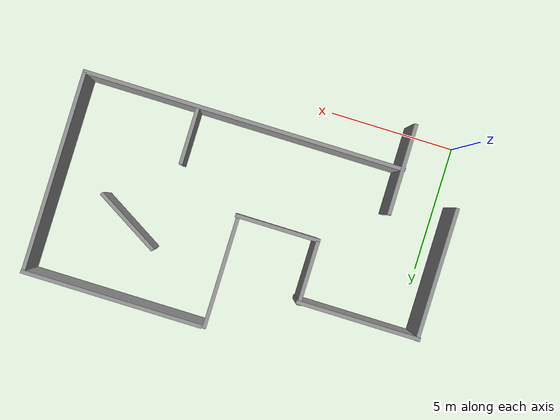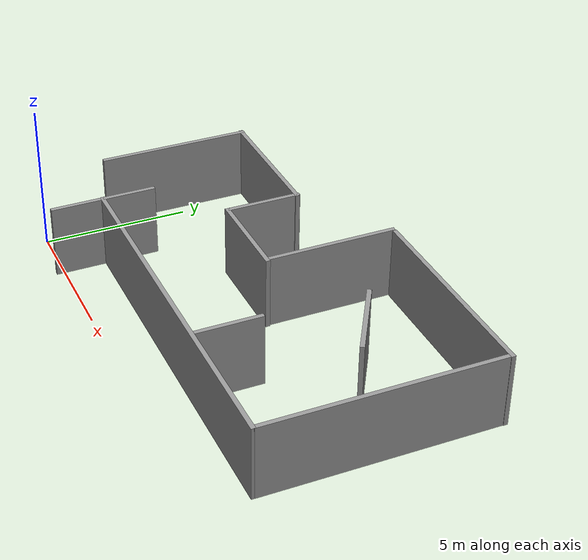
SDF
<?xml version='1.0'?>
<sdf version='1.7'>
  <model name='maze_2'>
    <link name='maze_2::maze_2::Wall_10'>
      <pose>1.98421 1.52646 0 0 -0 1.57526</pose>
      <self_collide>0</self_collide>
      <enable_wind>0</enable_wind>
      <kinematic>0</kinematic>
      <inertial>
        <inertia>
          <ixx>0</ixx>
          <ixy>0</ixy>
          <ixz>0</ixz>
          <iyy>0</iyy>
          <iyz>0</iyz>
          <izz>0</izz>
        </inertia>
        <mass>0</mass>
        <pose>0 0 0 0 -0 0</pose>
      </inertial>
      <visual name='Wall_10_Visual'>
        <pose>0 0 1.25 0 -0 0</pose>
        <geometry>
          <box>
            <size>3.58279 0.15 2.5</size>
          </box>
        </geometry>
        <material>
          <script>
            <uri>file://media/materials/scripts/gazebo.material</uri>
            <name>Gazebo/Grey</name>
          </script>
          <ambient>1 1 1 1</ambient>
          <shader type='pixel'/>
        </material>
        <meta>
          <layer>0</layer>
        </meta>
        <transparency>0</transparency>
        <cast_shadows>1</cast_shadows>
      </visual>
      <collision name='Wall_10_Collision'>
        <laser_retro>0</laser_retro>
        <max_contacts>10</max_contacts>
        <pose>0 0 1.25 0 -0 0</pose>
        <geometry>
          <box>
            <size>3.58279 0.15 2.5</size>
          </box>
        </geometry>
        <surface>
          <friction>
            <ode>
              <mu>1</mu>
              <mu2>1</mu2>
              <fdir1>0 0 0</fdir1>
              <slip1>0</slip1>
              <slip2>0</slip2>
            </ode>
            <torsional>
              <coefficient>1</coefficient>
              <patch_radius>0</patch_radius>
              <surface_radius>0</surface_radius>
              <use_patch_radius>1</use_patch_radius>
              <ode>
                <slip>0</slip>
              </ode>
            </torsional>
          </friction>
          <bounce>
            <restitution_coefficient>0</restitution_coefficient>
            <threshold>1e+06</threshold>
          </bounce>
          <contact>
            <collide_without_contact>0</collide_without_contact>
            <collide_without_contact_bitmask>1</collide_without_contact_bitmask>
            <collide_bitmask>1</collide_bitmask>
            <ode>
              <soft_cfm>0</soft_cfm>
              <soft_erp>0.2</soft_erp>
              <kp>1e+13</kp>
              <kd>1</kd>
              <max_vel>0.01</max_vel>
              <min_depth>0</min_depth>
            </ode>
            <bullet>
              <split_impulse>1</split_impulse>
              <split_impulse_penetration_threshold>-0.01</split_impulse_penetration_threshold>
              <soft_cfm>0</soft_cfm>
              <soft_erp>0.2</soft_erp>
              <kp>1e+13</kp>
              <kd>1</kd>
            </bullet>
          </contact>
        </surface>
      </collision>
    </link>
    <link name='maze_2::maze_2::Wall_12'>
      <pose>1.91308 7.47999 0 0 -0 0</pose>
      <self_collide>0</self_collide>
      <enable_wind>0</enable_wind>
      <kinematic>0</kinematic>
      <visual name='Wall_12_Visual'>
        <pose>0 0 1.25 0 -0 0</pose>
        <geometry>
          <box>
            <size>4.8995 0.15 2.5</size>
          </box>
        </geometry>
        <material>
          <script>
            <uri>file://media/materials/scripts/gazebo.material</uri>
            <name>Gazebo/Grey</name>
          </script>
          <ambient>1 1 1 1</ambient>
          <shader type='pixel'/>
        </material>
        <meta>
          <layer>0</layer>
        </meta>
        <transparency>0</transparency>
        <cast_shadows>1</cast_shadows>
      </visual>
      <collision name='Wall_12_Collision'>
        <laser_retro>0</laser_retro>
        <max_contacts>10</max_contacts>
        <pose>0 0 1.25 0 -0 0</pose>
        <geometry>
          <box>
            <size>4.8995 0.15 2.5</size>
          </box>
        </geometry>
        <surface>
          <friction>
            <ode>
              <mu>1</mu>
              <mu2>1</mu2>
              <fdir1>0 0 0</fdir1>
              <slip1>0</slip1>
              <slip2>0</slip2>
            </ode>
            <torsional>
              <coefficient>1</coefficient>
              <patch_radius>0</patch_radius>
              <surface_radius>0</surface_radius>
              <use_patch_radius>1</use_patch_radius>
              <ode>
                <slip>0</slip>
              </ode>
            </torsional>
          </friction>
          <bounce>
            <restitution_coefficient>0</restitution_coefficient>
            <threshold>1e+06</threshold>
          </bounce>
          <contact>
            <collide_without_contact>0</collide_without_contact>
            <collide_without_contact_bitmask>1</collide_without_contact_bitmask>
            <collide_bitmask>1</collide_bitmask>
            <ode>
              <soft_cfm>0</soft_cfm>
              <soft_erp>0.2</soft_erp>
              <kp>1e+13</kp>
              <kd>1</kd>
              <max_vel>0.01</max_vel>
              <min_depth>0</min_depth>
            </ode>
            <bullet>
              <split_impulse>1</split_impulse>
              <split_impulse_penetration_threshold>-0.01</split_impulse_penetration_threshold>
              <soft_cfm>0</soft_cfm>
              <soft_erp>0.2</soft_erp>
              <kp>1e+13</kp>
              <kd>1</kd>
            </bullet>
          </contact>
        </surface>
      </collision>
    </link>
    <link name='maze_2::maze_2::Wall_13'>
      <pose>4.2445 6.32095 0 0 0 -1.5708</pose>
      <self_collide>0</self_collide>
      <enable_wind>0</enable_wind>
      <kinematic>0</kinematic>
      <visual name='Wall_13_Visual'>
        <pose>0 0 1.25 0 -0 0</pose>
        <geometry>
          <box>
            <size>2.5285 0.15 2.5</size>
          </box>
        </geometry>
        <material>
          <script>
            <uri>file://media/materials/scripts/gazebo.material</uri>
            <name>Gazebo/Grey</name>
          </script>
          <ambient>1 1 1 1</ambient>
          <shader type='pixel'/>
        </material>
        <meta>
          <layer>0</layer>
        </meta>
        <transparency>0</transparency>
        <cast_shadows>1</cast_shadows>
      </visual>
      <collision name='Wall_13_Collision'>
        <laser_retro>0</laser_retro>
        <max_contacts>10</max_contacts>
        <pose>0 0 1.25 0 -0 0</pose>
        <geometry>
          <box>
            <size>2.5285 0.15 2.5</size>
          </box>
        </geometry>
        <surface>
          <friction>
            <ode>
              <mu>1</mu>
              <mu2>1</mu2>
              <fdir1>0 0 0</fdir1>
              <slip1>0</slip1>
              <slip2>0</slip2>
            </ode>
            <torsional>
              <coefficient>1</coefficient>
              <patch_radius>0</patch_radius>
              <surface_radius>0</surface_radius>
              <use_patch_radius>1</use_patch_radius>
              <ode>
                <slip>0</slip>
              </ode>
            </torsional>
          </friction>
          <bounce>
            <restitution_coefficient>0</restitution_coefficient>
            <threshold>1e+06</threshold>
          </bounce>
          <contact>
            <collide_without_contact>0</collide_without_contact>
            <collide_without_contact_bitmask>1</collide_without_contact_bitmask>
            <collide_bitmask>1</collide_bitmask>
            <ode>
              <soft_cfm>0</soft_cfm>
              <soft_erp>0.2</soft_erp>
              <kp>1e+13</kp>
              <kd>1</kd>
              <max_vel>0.01</max_vel>
              <min_depth>0</min_depth>
            </ode>
            <bullet>
              <split_impulse>1</split_impulse>
              <split_impulse_penetration_threshold>-0.01</split_impulse_penetration_threshold>
              <soft_cfm>0</soft_cfm>
              <soft_erp>0.2</soft_erp>
              <kp>1e+13</kp>
              <kd>1</kd>
            </bullet>
          </contact>
        </surface>
      </collision>
    </link>
    <link name='maze_2::maze_2::Wall_14'>
      <pose>5.848 5.03288 0 0 -0 0</pose>
      <self_collide>0</self_collide>
      <enable_wind>0</enable_wind>
      <kinematic>0</kinematic>
      <visual name='Wall_14_Visual'>
        <pose>0 0 1.25 0 -0 0</pose>
        <geometry>
          <box>
            <size>3.357 0.15 2.5</size>
          </box>
        </geometry>
        <material>
          <script>
            <uri>file://media/materials/scripts/gazebo.material</uri>
            <name>Gazebo/Grey</name>
          </script>
          <ambient>1 1 1 1</ambient>
          <shader type='pixel'/>
        </material>
        <meta>
          <layer>0</layer>
        </meta>
        <transparency>0</transparency>
        <cast_shadows>1</cast_shadows>
      </visual>
      <collision name='Wall_14_Collision'>
        <laser_retro>0</laser_retro>
        <max_contacts>10</max_contacts>
        <pose>0 0 1.25 0 -0 0</pose>
        <geometry>
          <box>
            <size>3.357 0.15 2.5</size>
          </box>
        </geometry>
        <surface>
          <friction>
            <ode>
              <mu>1</mu>
              <mu2>1</mu2>
              <fdir1>0 0 0</fdir1>
              <slip1>0</slip1>
              <slip2>0</slip2>
            </ode>
            <torsional>
              <coefficient>1</coefficient>
              <patch_radius>0</patch_radius>
              <surface_radius>0</surface_radius>
              <use_patch_radius>1</use_patch_radius>
              <ode>
                <slip>0</slip>
              </ode>
            </torsional>
          </friction>
          <bounce>
            <restitution_coefficient>0</restitution_coefficient>
            <threshold>1e+06</threshold>
          </bounce>
          <contact>
            <collide_without_contact>0</collide_without_contact>
            <collide_without_contact_bitmask>1</collide_without_contact_bitmask>
            <collide_bitmask>1</collide_bitmask>
            <ode>
              <soft_cfm>0</soft_cfm>
              <soft_erp>0.2</soft_erp>
              <kp>1e+13</kp>
              <kd>1</kd>
              <max_vel>0.01</max_vel>
              <min_depth>0</min_depth>
            </ode>
            <bullet>
              <split_impulse>1</split_impulse>
              <split_impulse_penetration_threshold>-0.01</split_impulse_penetration_threshold>
              <soft_cfm>0</soft_cfm>
              <soft_erp>0.2</soft_erp>
              <kp>1e+13</kp>
              <kd>1</kd>
            </bullet>
          </contact>
        </surface>
      </collision>
    </link>
    <link name='maze_2::maze_2::Wall_18'>
      <pose>7.3995 7.2919 0 0 -0 1.5708</pose>
      <self_collide>0</self_collide>
      <enable_wind>0</enable_wind>
      <kinematic>0</kinematic>
      <inertial>
        <inertia>
          <ixx>0</ixx>
          <ixy>0</ixy>
          <ixz>0</ixz>
          <iyy>0</iyy>
          <iyz>0</iyz>
          <izz>0</izz>
        </inertia>
        <mass>0</mass>
        <pose>0 0 0 0 -0 0</pose>
      </inertial>
      <visual name='Wall_18_Visual'>
        <pose>0 0 1.25 0 -0 0</pose>
        <geometry>
          <box>
            <size>4.36847 0.15 2.5</size>
          </box>
        </geometry>
        <material>
          <script>
            <uri>file://media/materials/scripts/gazebo.material</uri>
            <name>Gazebo/Grey</name>
          </script>
          <ambient>1 1 1 1</ambient>
          <shader type='pixel'/>
        </material>
        <meta>
          <layer>0</layer>
        </meta>
        <transparency>0</transparency>
        <cast_shadows>1</cast_shadows>
      </visual>
      <collision name='Wall_18_Collision'>
        <laser_retro>0</laser_retro>
        <max_contacts>10</max_contacts>
        <pose>0 0 1.25 0 -0 0</pose>
        <geometry>
          <box>
            <size>4.36847 0.15 2.5</size>
          </box>
        </geometry>
        <surface>
          <friction>
            <ode>
              <mu>1</mu>
              <mu2>1</mu2>
              <fdir1>0 0 0</fdir1>
              <slip1>0</slip1>
              <slip2>0</slip2>
            </ode>
            <torsional>
              <coefficient>1</coefficient>
              <patch_radius>0</patch_radius>
              <surface_radius>0</surface_radius>
              <use_patch_radius>1</use_patch_radius>
              <ode>
                <slip>0</slip>
              </ode>
            </torsional>
          </friction>
          <bounce>
            <restitution_coefficient>0</restitution_coefficient>
            <threshold>1e+06</threshold>
          </bounce>
          <contact>
            <collide_without_contact>0</collide_without_contact>
            <collide_without_contact_bitmask>1</collide_without_contact_bitmask>
            <collide_bitmask>1</collide_bitmask>
            <ode>
              <soft_cfm>0</soft_cfm>
              <soft_erp>0.2</soft_erp>
              <kp>1e+13</kp>
              <kd>1</kd>
              <max_vel>0.01</max_vel>
              <min_depth>0</min_depth>
            </ode>
            <bullet>
              <split_impulse>1</split_impulse>
              <split_impulse_penetration_threshold>-0.01</split_impulse_penetration_threshold>
              <soft_cfm>0</soft_cfm>
              <soft_erp>0.2</soft_erp>
              <kp>1e+13</kp>
              <kd>1</kd>
            </bullet>
          </contact>
        </surface>
      </collision>
    </link>
    <link name='maze_2::maze_2::Wall_19'>
      <pose>11.0742 9.42956 0 0 -0 0</pose>
      <self_collide>0</self_collide>
      <enable_wind>0</enable_wind>
      <kinematic>0</kinematic>
      <inertial>
        <inertia>
          <ixx>0</ixx>
          <ixy>0</ixy>
          <ixz>0</ixz>
          <iyy>0</iyy>
          <iyz>0</iyz>
          <izz>0</izz>
        </inertia>
        <mass>0</mass>
        <pose>0 0 0 0 -0 0</pose>
      </inertial>
      <visual name='Wall_19_Visual'>
        <pose>0 0 1.25 0 -0 0</pose>
        <geometry>
          <box>
            <size>7.15862 0.15 2.5</size>
          </box>
        </geometry>
        <material>
          <script>
            <uri>file://media/materials/scripts/gazebo.material</uri>
            <name>Gazebo/Grey</name>
          </script>
          <ambient>1 1 1 1</ambient>
          <shader type='pixel'/>
          <emissive>0 0 0 1</emissive>
        </material>
        <meta>
          <layer>0</layer>
        </meta>
        <transparency>0</transparency>
        <cast_shadows>1</cast_shadows>
      </visual>
      <collision name='Wall_19_Collision'>
        <laser_retro>0</laser_retro>
        <max_contacts>10</max_contacts>
        <pose>0 0 1.25 0 -0 0</pose>
        <geometry>
          <box>
            <size>7.15862 0.15 2.5</size>
          </box>
        </geometry>
        <surface>
          <friction>
            <ode>
              <mu>1</mu>
              <mu2>1</mu2>
              <fdir1>0 0 0</fdir1>
              <slip1>0</slip1>
              <slip2>0</slip2>
            </ode>
            <torsional>
              <coefficient>1</coefficient>
              <patch_radius>0</patch_radius>
              <surface_radius>0</surface_radius>
              <use_patch_radius>1</use_patch_radius>
              <ode>
                <slip>0</slip>
              </ode>
            </torsional>
          </friction>
          <bounce>
            <restitution_coefficient>0</restitution_coefficient>
            <threshold>1e+06</threshold>
          </bounce>
          <contact>
            <collide_without_contact>0</collide_without_contact>
            <collide_without_contact_bitmask>1</collide_without_contact_bitmask>
            <collide_bitmask>1</collide_bitmask>
            <ode>
              <soft_cfm>0</soft_cfm>
              <soft_erp>0.2</soft_erp>
              <kp>1e+13</kp>
              <kd>1</kd>
              <max_vel>0.01</max_vel>
              <min_depth>0</min_depth>
            </ode>
            <bullet>
              <split_impulse>1</split_impulse>
              <split_impulse_penetration_threshold>-0.01</split_impulse_penetration_threshold>
              <soft_cfm>0</soft_cfm>
              <soft_erp>0.2</soft_erp>
              <kp>1e+13</kp>
              <kd>1</kd>
            </bullet>
          </contact>
        </surface>
      </collision>
    </link>
    <link name='maze_2::maze_2::Wall_20'>
      <pose>14.5556 5.48503 0 0 0 -1.57244</pose>
      <self_collide>0</self_collide>
      <enable_wind>0</enable_wind>
      <kinematic>0</kinematic>
      <inertial>
        <inertia>
          <ixx>0</ixx>
          <ixy>0</ixy>
          <ixz>0</ixz>
          <iyy>0</iyy>
          <iyz>0</iyz>
          <izz>0</izz>
        </inertia>
        <mass>0</mass>
        <pose>0 0 0 0 -0 0</pose>
      </inertial>
      <visual name='Wall_20_Visual'>
        <pose>0 0 1.25 0 -0 0</pose>
        <geometry>
          <box>
            <size>7.88636 0.15 2.5</size>
          </box>
        </geometry>
        <material>
          <script>
            <uri>file://media/materials/scripts/gazebo.material</uri>
            <name>Gazebo/Grey</name>
          </script>
          <ambient>1 1 1 1</ambient>
          <shader type='pixel'/>
          <emissive>0 0 0 1</emissive>
        </material>
        <meta>
          <layer>0</layer>
        </meta>
        <transparency>0</transparency>
        <cast_shadows>1</cast_shadows>
      </visual>
      <collision name='Wall_20_Collision'>
        <laser_retro>0</laser_retro>
        <max_contacts>10</max_contacts>
        <pose>0 0 1.25 0 -0 0</pose>
        <geometry>
          <box>
            <size>7.88636 0.15 2.5</size>
          </box>
        </geometry>
        <surface>
          <friction>
            <ode>
              <mu>1</mu>
              <mu2>1</mu2>
              <fdir1>0 0 0</fdir1>
              <slip1>0</slip1>
              <slip2>0</slip2>
            </ode>
            <torsional>
              <coefficient>1</coefficient>
              <patch_radius>0</patch_radius>
              <surface_radius>0</surface_radius>
              <use_patch_radius>1</use_patch_radius>
              <ode>
                <slip>0</slip>
              </ode>
            </torsional>
          </friction>
          <bounce>
            <restitution_coefficient>0</restitution_coefficient>
            <threshold>1e+06</threshold>
          </bounce>
          <contact>
            <collide_without_contact>0</collide_without_contact>
            <collide_without_contact_bitmask>1</collide_without_contact_bitmask>
            <collide_bitmask>1</collide_bitmask>
            <ode>
              <soft_cfm>0</soft_cfm>
              <soft_erp>0.2</soft_erp>
              <kp>1e+13</kp>
              <kd>1</kd>
              <max_vel>0.01</max_vel>
              <min_depth>0</min_depth>
            </ode>
            <bullet>
              <split_impulse>1</split_impulse>
              <split_impulse_penetration_threshold>-0.01</split_impulse_penetration_threshold>
              <soft_cfm>0</soft_cfm>
              <soft_erp>0.2</soft_erp>
              <kp>1e+13</kp>
              <kd>1</kd>
            </bullet>
          </contact>
        </surface>
      </collision>
    </link>
    <link name='maze_2::maze_2::Wall_21'>
      <pose>8.25291 1.51803 0 0 -0 3.14159</pose>
      <self_collide>0</self_collide>
      <enable_wind>0</enable_wind>
      <kinematic>0</kinematic>
      <inertial>
        <inertia>
          <ixx>0</ixx>
          <ixy>0</ixy>
          <ixz>0</ixz>
          <iyy>0</iyy>
          <iyz>0</iyz>
          <izz>0</izz>
        </inertia>
        <mass>0</mass>
        <pose>0 0 0 0 -0 0</pose>
      </inertial>
      <visual name='Wall_21_Visual'>
        <pose>0 0 1.25 0 -0 0</pose>
        <geometry>
          <box>
            <size>12.7317 0.15 2.5</size>
          </box>
        </geometry>
        <material>
          <script>
            <uri>file://media/materials/scripts/gazebo.material</uri>
            <name>Gazebo/Grey</name>
          </script>
          <ambient>1 1 1 1</ambient>
          <shader type='pixel'/>
        </material>
        <meta>
          <layer>0</layer>
        </meta>
        <transparency>0</transparency>
        <cast_shadows>1</cast_shadows>
      </visual>
      <collision name='Wall_21_Collision'>
        <laser_retro>0</laser_retro>
        <max_contacts>10</max_contacts>
        <pose>0 0 1.25 0 -0 0</pose>
        <geometry>
          <box>
            <size>12.7317 0.15 2.5</size>
          </box>
        </geometry>
        <surface>
          <friction>
            <ode>
              <mu>1</mu>
              <mu2>1</mu2>
              <fdir1>0 0 0</fdir1>
              <slip1>0</slip1>
              <slip2>0</slip2>
            </ode>
            <torsional>
              <coefficient>1</coefficient>
              <patch_radius>0</patch_radius>
              <surface_radius>0</surface_radius>
              <use_patch_radius>1</use_patch_radius>
              <ode>
                <slip>0</slip>
              </ode>
            </torsional>
          </friction>
          <bounce>
            <restitution_coefficient>0</restitution_coefficient>
            <threshold>1e+06</threshold>
          </bounce>
          <contact>
            <collide_without_contact>0</collide_without_contact>
            <collide_without_contact_bitmask>1</collide_without_contact_bitmask>
            <collide_bitmask>1</collide_bitmask>
            <ode>
              <soft_cfm>0</soft_cfm>
              <soft_erp>0.2</soft_erp>
              <kp>1e+13</kp>
              <kd>1</kd>
              <max_vel>0.01</max_vel>
              <min_depth>0</min_depth>
            </ode>
            <bullet>
              <split_impulse>1</split_impulse>
              <split_impulse_penetration_threshold>-0.01</split_impulse_penetration_threshold>
              <soft_cfm>0</soft_cfm>
              <soft_erp>0.2</soft_erp>
              <kp>1e+13</kp>
              <kd>1</kd>
            </bullet>
          </contact>
        </surface>
      </collision>
    </link>
    <link name='maze_2::maze_2::Wall_24'>
      <pose>10.0635 2.67296 0 0 -0 1.5708</pose>
      <self_collide>0</self_collide>
      <enable_wind>0</enable_wind>
      <kinematic>0</kinematic>
      <visual name='Wall_24_Visual'>
        <pose>0 0 1.25 0 -0 0</pose>
        <geometry>
          <box>
            <size>2.25 0.15 2.5</size>
          </box>
        </geometry>
        <material>
          <script>
            <uri>file://media/materials/scripts/gazebo.material</uri>
            <name>Gazebo/Grey</name>
          </script>
          <ambient>1 1 1 1</ambient>
          <shader type='pixel'/>
        </material>
        <meta>
          <layer>0</layer>
        </meta>
        <transparency>0</transparency>
        <cast_shadows>1</cast_shadows>
      </visual>
      <collision name='Wall_24_Collision'>
        <laser_retro>0</laser_retro>
        <max_contacts>10</max_contacts>
        <pose>0 0 1.25 0 -0 0</pose>
        <geometry>
          <box>
            <size>2.25 0.15 2.5</size>
          </box>
        </geometry>
        <surface>
          <friction>
            <ode>
              <mu>1</mu>
              <mu2>1</mu2>
              <fdir1>0 0 0</fdir1>
              <slip1>0</slip1>
              <slip2>0</slip2>
            </ode>
            <torsional>
              <coefficient>1</coefficient>
              <patch_radius>0</patch_radius>
              <surface_radius>0</surface_radius>
              <use_patch_radius>1</use_patch_radius>
              <ode>
                <slip>0</slip>
              </ode>
            </torsional>
          </friction>
          <bounce>
            <restitution_coefficient>0</restitution_coefficient>
            <threshold>1e+06</threshold>
          </bounce>
          <contact>
            <collide_without_contact>0</collide_without_contact>
            <collide_without_contact_bitmask>1</collide_without_contact_bitmask>
            <collide_bitmask>1</collide_bitmask>
            <ode>
              <soft_cfm>0</soft_cfm>
              <soft_erp>0.2</soft_erp>
              <kp>1e+13</kp>
              <kd>1</kd>
              <max_vel>0.01</max_vel>
              <min_depth>0</min_depth>
            </ode>
            <bullet>
              <split_impulse>1</split_impulse>
              <split_impulse_penetration_threshold>-0.01</split_impulse_penetration_threshold>
              <soft_cfm>0</soft_cfm>
              <soft_erp>0.2</soft_erp>
              <kp>1e+13</kp>
              <kd>1</kd>
            </bullet>
          </contact>
        </surface>
      </collision>
    </link>
    <link name='maze_2::maze_2::Wall_26'>
      <pose>11.3534 6.4626 0 0 0 -0.53971</pose>
      <self_collide>0</self_collide>
      <enable_wind>0</enable_wind>
      <kinematic>0</kinematic>
      <inertial>
        <inertia>
          <ixx>0</ixx>
          <ixy>0</ixy>
          <ixz>0</ixz>
          <iyy>0</iyy>
          <iyz>0</iyz>
          <izz>0</izz>
        </inertia>
        <mass>0</mass>
        <pose>0 0 0 0 -0 0</pose>
      </inertial>
      <visual name='Wall_26_Visual'>
        <pose>0 0 1.25 0 -0 0</pose>
        <geometry>
          <box>
            <size>2.88752 0.15 2.5</size>
          </box>
        </geometry>
        <material>
          <script>
            <uri>file://media/materials/scripts/gazebo.material</uri>
            <name>Gazebo/Grey</name>
          </script>
          <ambient>1 1 1 1</ambient>
          <shader type='pixel'/>
        </material>
        <meta>
          <layer>0</layer>
        </meta>
        <transparency>0</transparency>
        <cast_shadows>1</cast_shadows>
      </visual>
      <collision name='Wall_26_Collision'>
        <laser_retro>0</laser_retro>
        <max_contacts>10</max_contacts>
        <pose>0 0 1.25 0 -0 0</pose>
        <geometry>
          <box>
            <size>2.88752 0.15 2.5</size>
          </box>
        </geometry>
        <surface>
          <friction>
            <ode>
              <mu>1</mu>
              <mu2>1</mu2>
              <fdir1>0 0 0</fdir1>
              <slip1>0</slip1>
              <slip2>0</slip2>
            </ode>
            <torsional>
              <coefficient>1</coefficient>
              <patch_radius>0</patch_radius>
              <surface_radius>0</surface_radius>
              <use_patch_radius>1</use_patch_radius>
              <ode>
                <slip>0</slip>
              </ode>
            </torsional>
          </friction>
          <bounce>
            <restitution_coefficient>0</restitution_coefficient>
            <threshold>1e+06</threshold>
          </bounce>
          <contact>
            <collide_without_contact>0</collide_without_contact>
            <collide_without_contact_bitmask>1</collide_without_contact_bitmask>
            <collide_bitmask>1</collide_bitmask>
            <ode>
              <soft_cfm>0</soft_cfm>
              <soft_erp>0.2</soft_erp>
              <kp>1e+13</kp>
              <kd>1</kd>
              <max_vel>0.01</max_vel>
              <min_depth>0</min_depth>
            </ode>
            <bullet>
              <split_impulse>1</split_impulse>
              <split_impulse_penetration_threshold>-0.01</split_impulse_penetration_threshold>
              <soft_cfm>0</soft_cfm>
              <soft_erp>0.2</soft_erp>
              <kp>1e+13</kp>
              <kd>1</kd>
            </bullet>
          </contact>
        </surface>
      </collision>
    </link>
    <link name='maze_2::maze_2::Wall_5'>
      <pose>-0.432241 4.94044 0 0 -0 1.5708</pose>
      <self_collide>0</self_collide>
      <enable_wind>0</enable_wind>
      <kinematic>0</kinematic>
      <visual name='Wall_5_Visual'>
        <pose>0 0 1.25 0 -0 0</pose>
        <geometry>
          <box>
            <size>5.25 0.15 2.5</size>
          </box>
        </geometry>
        <material>
          <script>
            <uri>file://media/materials/scripts/gazebo.material</uri>
            <name>Gazebo/Grey</name>
          </script>
          <ambient>1 1 1 1</ambient>
          <shader type='pixel'/>
        </material>
        <meta>
          <layer>0</layer>
        </meta>
        <transparency>0</transparency>
        <cast_shadows>1</cast_shadows>
      </visual>
      <collision name='Wall_5_Collision'>
        <laser_retro>0</laser_retro>
        <max_contacts>10</max_contacts>
        <pose>0 0 1.25 0 -0 0</pose>
        <geometry>
          <box>
            <size>5.25 0.15 2.5</size>
          </box>
        </geometry>
        <surface>
          <friction>
            <ode>
              <mu>1</mu>
              <mu2>1</mu2>
              <fdir1>0 0 0</fdir1>
              <slip1>0</slip1>
              <slip2>0</slip2>
            </ode>
            <torsional>
              <coefficient>1</coefficient>
              <patch_radius>0</patch_radius>
              <surface_radius>0</surface_radius>
              <use_patch_radius>1</use_patch_radius>
              <ode>
                <slip>0</slip>
              </ode>
            </torsional>
          </friction>
          <bounce>
            <restitution_coefficient>0</restitution_coefficient>
            <threshold>1e+06</threshold>
          </bounce>
          <contact>
            <collide_without_contact>0</collide_without_contact>
            <collide_without_contact_bitmask>1</collide_without_contact_bitmask>
            <collide_bitmask>1</collide_bitmask>
            <ode>
              <soft_cfm>0</soft_cfm>
              <soft_erp>0.2</soft_erp>
              <kp>1e+13</kp>
              <kd>1</kd>
              <max_vel>0.01</max_vel>
              <min_depth>0</min_depth>
            </ode>
            <bullet>
              <split_impulse>1</split_impulse>
              <split_impulse_penetration_threshold>-0.01</split_impulse_penetration_threshold>
              <soft_cfm>0</soft_cfm>
              <soft_erp>0.2</soft_erp>
              <kp>1e+13</kp>
              <kd>1</kd>
            </bullet>
          </contact>
        </surface>
      </collision>
    </link>
    <static>1</static>
    <allow_auto_disable>1</allow_auto_disable>
  </model>
</sdf>
